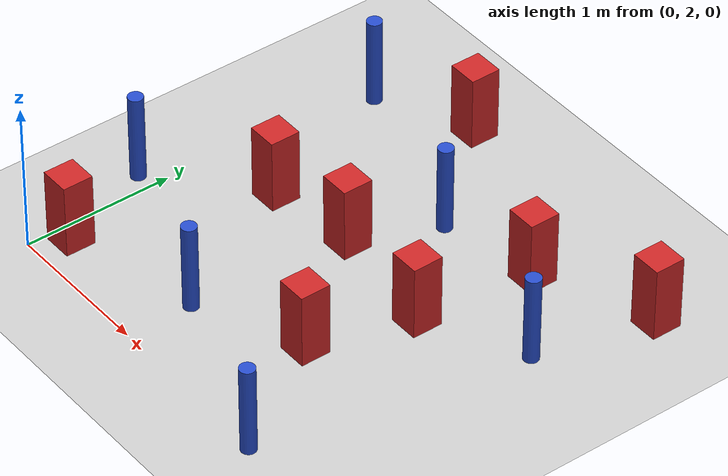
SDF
<sdf version="1.6">
 <world name="default">
  <model name="ground_plane">
   <static>1</static>
   <link name="link">
    <collision name="collision">
     <geometry><plane><normal>0 0 1</normal><size>100 100</size></plane></geometry>
     <surface><friction><ode><mu>100</mu><mu2>50</mu2></ode></friction></surface>
    </collision>
    <visual name="visual">
     <cast_shadows>0</cast_shadows>
     <geometry><plane><normal>0 0 1</normal><size>100 100</size></plane></geometry>
     <material>
      <ambient>1.0 1.0 1.0 1.0</ambient>
      <diffuse>0.8 0.8 0.8 1.0</diffuse>
      <specular>0.01 0.01 0.01 1.000000</specular>
     </material>
    </visual>
   </link>
  </model>
  <model name="square_post_obstacle2">
   <static>true</static>
   <pose>2.74004452826 4.44997248497 1.91545236811e-07 -7.35059704564e-06 1.12565212e-07 2.39332434364e-05</pose>
   <link name="link">
    <pose>0 0 0.25 0 -0 0</pose>
    <inertial>
     <mass>100</mass>
     <inertia>
      <ixx>0.166667</ixx>
      <ixy>0</ixy>
      <ixz>0</ixz>
      <iyy>0.166667</iyy>
      <iyz>0</iyz>
      <izz>0.166667</izz>
     </inertia>
    </inertial>
    <collision name="collision"><geometry><box><size>.2 .2 .5</size></box></geometry></collision>
    <visual name="visual">
     <geometry><box><size>.2 .2 .5</size></box></geometry>
     <material>
      <script><name>Gazebo/Red</name><uri>file://media/materials/scripts/gazebo.material</uri></script>
     </material>
    </visual>
   </link>
  </model>
  <model name="square_post_obstacle5">
   <static>true</static>
   <pose>2.00726199635 4.14036605938 1.91545236811e-07 -7.35059704564e-06 1.12565212e-07 2.39332434364e-05</pose>
   <link name="link">
    <pose>0 0 0.25 0 -0 0</pose>
    <inertial>
     <mass>100</mass>
     <inertia>
      <ixx>0.166667</ixx>
      <ixy>0</ixy>
      <ixz>0</ixz>
      <iyy>0.166667</iyy>
      <iyz>0</iyz>
      <izz>0.166667</izz>
     </inertia>
    </inertial>
    <collision name="collision"><geometry><box><size>.2 .2 .5</size></box></geometry></collision>
    <visual name="visual">
     <geometry><box><size>.2 .2 .5</size></box></geometry>
     <material>
      <script><name>Gazebo/Red</name><uri>file://media/materials/scripts/gazebo.material</uri></script>
     </material>
    </visual>
   </link>
  </model>
  <model name="square_post_obstacle33">
   <static>true</static>
   <pose>0.518776691572 3.40940659689 1.91545236811e-07 -7.35059704564e-06 1.12565212e-07 2.39332434364e-05</pose>
   <link name="link">
    <pose>0 0 0.25 0 -0 0</pose>
    <inertial>
     <mass>100</mass>
     <inertia>
      <ixx>0.166667</ixx>
      <ixy>0</ixy>
      <ixz>0</ixz>
      <iyy>0.166667</iyy>
      <iyz>0</iyz>
      <izz>0.166667</izz>
     </inertia>
    </inertial>
    <collision name="collision"><geometry><box><size>.2 .2 .5</size></box></geometry></collision>
    <visual name="visual">
     <geometry><box><size>.2 .2 .5</size></box></geometry>
     <material>
      <script><name>Gazebo/Red</name><uri>file://media/materials/scripts/gazebo.material</uri></script>
     </material>
    </visual>
   </link>
  </model>
  <model name="pole_obstacle32">
   <static>true</static>
   <pose>-0.123792153698 2.87314312874 7.38925637345e-09 -8.47170692799e-08 1.24976765077e-08 -1.74513093017e-07</pose>
   <link name="link">
    <pose>0 0 0.3 0 -0 0</pose>
    <inertial>
     <mass>1</mass>
     <inertia><ixx>0.145833</ixx><ixy>0</ixy><ixz>0</ixz><iyy>0.145833</iyy><iyz>0</iyz><izz>0.125</izz></inertia>
    </inertial>
    <collision name="collision">
     <geometry><cylinder><radius>0.05</radius><length>.6</length></cylinder></geometry>
    </collision>
    <visual name="visual">
     <geometry><cylinder><radius>0.05</radius><length>.6</length></cylinder></geometry>
     <material>
      <script><name>Gazebo/Blue</name><uri>file://media/materials/scripts/gazebo.material</uri></script>
     </material>
    </visual>
   </link>
  </model>
  <model name="pole_obstacle56">
   <static>true</static>
   <pose>0.149884830955 4.42055607667 7.38925637345e-09 -8.471706928e-08 1.24976765036e-08 -1.74513093019e-07</pose>
   <link name="link">
    <pose>0 0 0.3 0 -0 0</pose>
    <inertial>
     <mass>1</mass>
     <inertia><ixx>0.145833</ixx><ixy>0</ixy><ixz>0</ixz><iyy>0.145833</iyy><iyz>0</iyz><izz>0.125</izz></inertia>
    </inertial>
    <collision name="collision">
     <geometry><cylinder><radius>0.05</radius><length>.6</length></cylinder></geometry>
    </collision>
    <visual name="visual">
     <geometry><cylinder><radius>0.05</radius><length>.6</length></cylinder></geometry>
     <material>
      <script><name>Gazebo/Blue</name><uri>file://media/materials/scripts/gazebo.material</uri></script>
     </material>
    </visual>
   </link>
  </model>
  <model name="square_post_obstacle87">
   <static>true</static>
   <pose>1.71121161349 2.73054634418 1.91545236811e-07 -7.35059704564e-06 1.12565212e-07 2.39332434364e-05</pose>
   <link name="link">
    <pose>0 0 0.25 0 -0 0</pose>
    <inertial>
     <mass>100</mass>
     <inertia>
      <ixx>0.166667</ixx>
      <ixy>0</ixy>
      <ixz>0</ixz>
      <iyy>0.166667</iyy>
      <iyz>0</iyz>
      <izz>0.166667</izz>
     </inertia>
    </inertial>
    <collision name="collision"><geometry><box><size>.2 .2 .5</size></box></geometry></collision>
    <visual name="visual">
     <geometry><box><size>.2 .2 .5</size></box></geometry>
     <material>
      <script><name>Gazebo/Red</name><uri>file://media/materials/scripts/gazebo.material</uri></script>
     </material>
    </visual>
   </link>
  </model>
  <model name="pole_obstacle99">
   <static>true</static>
   <pose>1.34469098253 4.01944229781 7.38925637345e-09 -8.47170692799e-08 1.24976765024e-08 -1.7451309302e-07</pose>
   <link name="link">
    <pose>0 0 0.3 0 -0 0</pose>
    <inertial>
     <mass>1</mass>
     <inertia><ixx>0.145833</ixx><ixy>0</ixy><ixz>0</ixz><iyy>0.145833</iyy><iyz>0</iyz><izz>0.125</izz></inertia>
    </inertial>
    <collision name="collision">
     <geometry><cylinder><radius>0.05</radius><length>.6</length></cylinder></geometry>
    </collision>
    <visual name="visual">
     <geometry><cylinder><radius>0.05</radius><length>.6</length></cylinder></geometry>
     <material>
      <script><name>Gazebo/Blue</name><uri>file://media/materials/scripts/gazebo.material</uri></script>
     </material>
    </visual>
   </link>
  </model>
  <model name="pole_obstacle111">
   <static>true</static>
   <pose>2.17846386794 1.98630014566 7.38925637345e-09 -8.47170692799e-08 1.24976764986e-08 -1.74513093023e-07</pose>
   <link name="link">
    <pose>0 0 0.3 0 -0 0</pose>
    <inertial>
     <mass>1</mass>
     <inertia><ixx>0.145833</ixx><ixy>0</ixy><ixz>0</ixz><iyy>0.145833</iyy><iyz>0</iyz><izz>0.125</izz></inertia>
    </inertial>
    <collision name="collision">
     <geometry><cylinder><radius>0.05</radius><length>.6</length></cylinder></geometry>
    </collision>
    <visual name="visual">
     <geometry><cylinder><radius>0.05</radius><length>.6</length></cylinder></geometry>
     <material>
      <script><name>Gazebo/Blue</name><uri>file://media/materials/scripts/gazebo.material</uri></script>
     </material>
    </visual>
   </link>
  </model>
  <model name="pole_obstacle130">
   <static>true</static>
   <pose>2.53861991023 3.70097407299 7.38925637345e-09 -8.47170692798e-08 1.24976764939e-08 -1.74513093025e-07</pose>
   <link name="link">
    <pose>0 0 0.3 0 -0 0</pose>
    <inertial>
     <mass>1</mass>
     <inertia><ixx>0.145833</ixx><ixy>0</ixy><ixz>0</ixz><iyy>0.145833</iyy><iyz>0</iyz><izz>0.125</izz></inertia>
    </inertial>
    <collision name="collision">
     <geometry><cylinder><radius>0.05</radius><length>.6</length></cylinder></geometry>
    </collision>
    <visual name="visual">
     <geometry><cylinder><radius>0.05</radius><length>.6</length></cylinder></geometry>
     <material>
      <script><name>Gazebo/Blue</name><uri>file://media/materials/scripts/gazebo.material</uri></script>
     </material>
    </visual>
   </link>
  </model>
  <model name="pole_obstacle131">
   <static>true</static>
   <pose>1.0141806648 2.43565714776 7.38925637345e-09 -8.471706928e-08 1.2497676505e-08 -1.74513093017e-07</pose>
   <link name="link">
    <pose>0 0 0.3 0 -0 0</pose>
    <inertial>
     <mass>1</mass>
     <inertia><ixx>0.145833</ixx><ixy>0</ixy><ixz>0</ixz><iyy>0.145833</iyy><iyz>0</iyz><izz>0.125</izz></inertia>
    </inertial>
    <collision name="collision">
     <geometry><cylinder><radius>0.05</radius><length>.6</length></cylinder></geometry>
    </collision>
    <visual name="visual">
     <geometry><cylinder><radius>0.05</radius><length>.6</length></cylinder></geometry>
     <material>
      <script><name>Gazebo/Blue</name><uri>file://media/materials/scripts/gazebo.material</uri></script>
     </material>
    </visual>
   </link>
  </model>
  <model name="square_post_obstacle126">
   <static>true</static>
   <pose>1.90401485807 3.37776465981 1.91545236811e-07 -7.35059704564e-06 1.12565212e-07 2.39332434364e-05</pose>
   <link name="link">
    <pose>0 0 0.25 0 -0 0</pose>
    <inertial>
     <mass>100</mass>
     <inertia>
      <ixx>0.166667</ixx>
      <ixy>0</ixy>
      <ixz>0</ixz>
      <iyy>0.166667</iyy>
      <iyz>0</iyz>
      <izz>0.166667</izz>
     </inertia>
    </inertial>
    <collision name="collision"><geometry><box><size>.2 .2 .5</size></box></geometry></collision>
    <visual name="visual">
     <geometry><box><size>.2 .2 .5</size></box></geometry>
     <material>
      <script><name>Gazebo/Red</name><uri>file://media/materials/scripts/gazebo.material</uri></script>
     </material>
    </visual>
   </link>
  </model>
  <model name="square_post_obstacle159">
   <static>true</static>
   <pose>1.12393538461 3.47744458906 1.91545236811e-07 -7.35059704564e-06 1.12565212e-07 2.39332434364e-05</pose>
   <link name="link">
    <pose>0 0 0.25 0 -0 0</pose>
    <inertial>
     <mass>100</mass>
     <inertia>
      <ixx>0.166667</ixx>
      <ixy>0</ixy>
      <ixz>0</ixz>
      <iyy>0.166667</iyy>
      <iyz>0</iyz>
      <izz>0.166667</izz>
     </inertia>
    </inertial>
    <collision name="collision"><geometry><box><size>.2 .2 .5</size></box></geometry></collision>
    <visual name="visual">
     <geometry><box><size>.2 .2 .5</size></box></geometry>
     <material>
      <script><name>Gazebo/Red</name><uri>file://media/materials/scripts/gazebo.material</uri></script>
     </material>
    </visual>
   </link>
  </model>
  <model name="square_post_obstacle171">
   <static>true</static>
   <pose>0.76720076038 4.69903804857 1.91545236811e-07 -7.35059704564e-06 1.12565212e-07 2.39332434364e-05</pose>
   <link name="link">
    <pose>0 0 0.25 0 -0 0</pose>
    <inertial>
     <mass>100</mass>
     <inertia>
      <ixx>0.166667</ixx>
      <ixy>0</ixy>
      <ixz>0</ixz>
      <iyy>0.166667</iyy>
      <iyz>0</iyz>
      <izz>0.166667</izz>
     </inertia>
    </inertial>
    <collision name="collision"><geometry><box><size>.2 .2 .5</size></box></geometry></collision>
    <visual name="visual">
     <geometry><box><size>.2 .2 .5</size></box></geometry>
     <material>
      <script><name>Gazebo/Red</name><uri>file://media/materials/scripts/gazebo.material</uri></script>
     </material>
    </visual>
   </link>
  </model>
  <model name="square_post_obstacle183">
   <static>true</static>
   <pose>0.123315161112 2.22061374139 1.91545236811e-07 -7.35059704564e-06 1.12565212e-07 2.39332434364e-05</pose>
   <link name="link">
    <pose>0 0 0.25 0 -0 0</pose>
    <inertial>
     <mass>100</mass>
     <inertia>
      <ixx>0.166667</ixx>
      <ixy>0</ixy>
      <ixz>0</ixz>
      <iyy>0.166667</iyy>
      <iyz>0</iyz>
      <izz>0.166667</izz>
     </inertia>
    </inertial>
    <collision name="collision"><geometry><box><size>.2 .2 .5</size></box></geometry></collision>
    <visual name="visual">
     <geometry><box><size>.2 .2 .5</size></box></geometry>
     <material>
      <script><name>Gazebo/Red</name><uri>file://media/materials/scripts/gazebo.material</uri></script>
     </material>
    </visual>
   </link>
  </model>
 </world>
</sdf>
